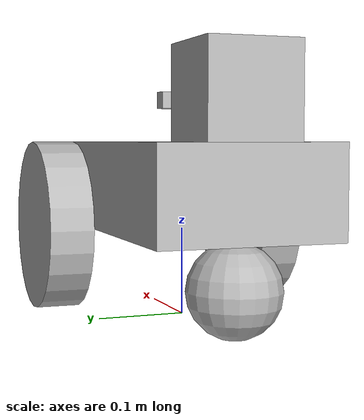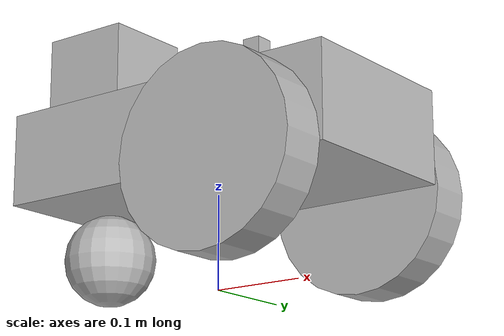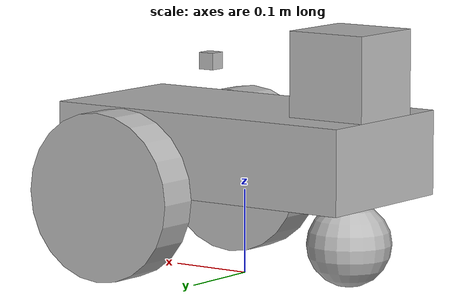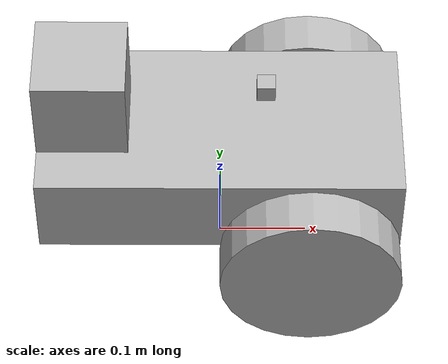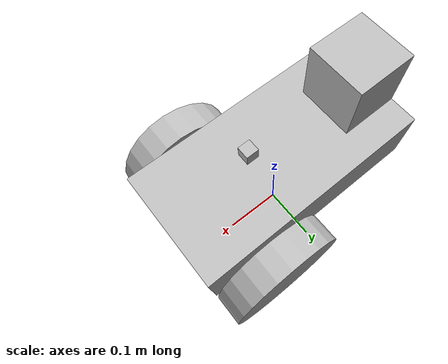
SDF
<?xml version='1.0'?>
<sdf version='1.4'>
  <model name="my_robot">
	<static>false</static>
	    <link name='chassis'>
            <pose>0 0 .1 0 0 0</pose>

            <collision name='collision'>
              <geometry>
                <box>
                  <size>.4 .2 .1</size>
                </box>
              </geometry>
            </collision>

            <visual name='visual'>
	      <pose>0 0 0.05 0 0 0</pose>
              <geometry>
                <box>
		    <size>.4 .2 .1</size>
		</box>
              </geometry>
            </visual>

	    <collision name='caster_collision'>
            <pose>-0.15 0 -0.05 0 0 0</pose>
            <geometry>
                <sphere>
                <radius>.05</radius>
              </sphere>
            </geometry>

            <surface>
              <friction>
                <ode>
                  <mu>0</mu>
                  <mu2>0</mu2>
                  <slip1>1.0</slip1>
                  <slip2>1.0</slip2>
                </ode>
              </friction>
            </surface>
          </collision>

          <visual name='caster_visual'>
            <pose>-0.15 0 -0.05 0 0 0</pose>
            <geometry>
              <sphere>
                <radius>.05</radius>
              </sphere>
            </geometry>
          </visual>
          </link>

	<link name="left_wheel">
	<pose>0.1 0.13 0.1 0 1.5707 1.5707</pose>
	<collision name="collision">
	  <geometry>
	    <cylinder>
	      <radius>.1</radius>
	      <length>.05</length>
	    </cylinder>
	  </geometry>
	</collision>
	<visual name="visual">
	  <geometry>
	    <cylinder>
	      <radius>.1</radius>
	      <length>.05</length>
	    </cylinder>
	  </geometry>
	</visual>
      </link>

	 <link name="right_wheel">
        <pose>0.1 -0.13 0.1 0 1.5707 1.5707</pose>
        <collision name="collision">
          <geometry>
            <cylinder>
              <radius>.1</radius>
              <length>.05</length>
            </cylinder>
          </geometry>
        </collision>
        <visual name="visual">
          <geometry>
            <cylinder>
              <radius>.1</radius>
              <length>.05</length>
            </cylinder>
          </geometry>
        </visual>
      </link>

	<joint type="revolute" name="left_wheel_hinge">
        <pose>0 0 -0.03 0 0 0</pose>
        <child>left_wheel</child>
        <parent>chassis</parent>
        <axis>
          <xyz>0 1 0</xyz>
        </axis>
      </joint>

      <joint type="revolute" name="right_wheel_hinge">
        <pose>0 0 0.03 0 0 0</pose>
        <child>right_wheel</child>
        <parent>chassis</parent>
        <axis>
          <xyz>0 1 0</xyz>
        </axis>
      </joint>

	<include>
      <uri>model://camera</uri>
      <pose>-0.1 0.05 0.2 0 0 3.1415</pose>
    </include>
    <joint name="cam_joint" type="fixed">
      <child>camera::link</child>
      <parent>chassis</parent>
    </joint>

	<include>
      <uri>model://noisy_imu</uri>
      <pose>0.05 0 0.25 0 0 3.1415</pose>
    </include>
    <joint name="imu_joint" type="fixed">
      <child>imu::link</child>
      <parent>chassis</parent>
    </joint>

    <transmission name="tran1">
    <type>transmission_interface/SimpleTransmission</type>
    <joint name="left_wheel_hinge">
      <hardwareInterface>EffortJointInterface</hardwareInterface>
    </joint>
    <actuator name="motor1">
      <hardwareInterface>EffortJointInterface</hardwareInterface>
      <mechanicalReduction>1</mechanicalReduction>
    </actuator>
  </transmission>

  <transmission name="tran2">
    <type>transmission_interface/SimpleTransmission</type>
    <joint name="right_wheel_hinge">
      <hardwareInterface>EffortJointInterface</hardwareInterface>
    </joint>
    <actuator name="motor2">
      <hardwareInterface>EffortJointInterface</hardwareInterface>
      <mechanicalReduction>1</mechanicalReduction>
    </actuator>
  </transmission>

  <plugin name="gazebo_ros_control" filename="libgazebo_ros_control.so">
  </plugin>
  </model>
</sdf>

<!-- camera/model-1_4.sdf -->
<sdf version="1.4">
  <model name="camera">
    <link name="link">
      <pose>0.05 0.05 0.05 0 0 0</pose>
      <inertial>
        <mass>0.1</mass>
      </inertial>
      <collision name="collision">
        <geometry>
          <box>
            <size>0.1 0.1 0.1</size>
          </box>
        </geometry>
      </collision>
      <visual name="visual">
        <geometry>
          <box>
            <size>0.1 0.1 0.1</size>
          </box>
        </geometry>
      </visual>
      <sensor name="camera" type="camera">
        <camera>
          <horizontal_fov>1.047</horizontal_fov>
          <image>
            <width>320</width>
            <height>240</height>
          </image>
          <clip>
            <near>0.1</near>
            <far>100</far>
          </clip>
	  <noise>
            <type>gaussian</type>
            <mean>0.0</mean>
            <stddev>0.07</stddev>
          </noise>
        </camera>
        <always_on>1</always_on>
        <update_rate>30</update_rate>
        <visualize>true</visualize>
      </sensor>
    </link>
  </model>
</sdf>

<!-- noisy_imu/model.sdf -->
<sdf version="1.6">
  <model name="imu">
    <link name="imu_link">
    <inertial>
      <mass>0.1</mass>
    </inertial>
    <visual name="visual">
      <geometry>
        <box>
          <size>0.02 0.02 0.02</size>
        </box>
      </geometry>
    </visual>
    <collision name="collision">
      <geometry>
        <box>
          <size>0.02 0.02 0.02</size>
        </box>
      </geometry>
    </collision>
    <sensor name="imu" type="imu">
      <imu>
        <angular_velocity>
          <x>
            <noise type="gaussian">
              <mean>0.0</mean>
              <stddev>2e-4</stddev>
              <bias_mean>0.0000075</bias_mean>
              <bias_stddev>0.0000008</bias_stddev>
            </noise>
          </x>
          <y>
            <noise type="gaussian">
              <mean>0.0</mean>
              <stddev>2e-4</stddev>
              <bias_mean>0.0000075</bias_mean>
              <bias_stddev>0.0000008</bias_stddev>
            </noise>
          </y>
          <z>
            <noise type="gaussian">
              <mean>0.0</mean>
              <stddev>2e-4</stddev>
              <bias_mean>0.0000075</bias_mean>
              <bias_stddev>0.0000008</bias_stddev>
            </noise>
          </z>
        </angular_velocity>
        <linear_acceleration>
          <x>
            <noise type="gaussian">
              <mean>0.0</mean>
              <stddev>1.7e-2</stddev>
              <bias_mean>0.1</bias_mean>
              <bias_stddev>0.001</bias_stddev>
            </noise>
          </x>
          <y>
            <noise type="gaussian">
              <mean>0.0</mean>
              <stddev>1.7e-2</stddev>
              <bias_mean>0.1</bias_mean>
              <bias_stddev>0.001</bias_stddev>
            </noise>
          </y>
          <z>
            <noise type="gaussian">
              <mean>0.0</mean>
              <stddev>1.7e-2</stddev>
              <bias_mean>0.1</bias_mean>
              <bias_stddev>0.001</bias_stddev>
            </noise>
          </z>
        </linear_acceleration>
      </imu>
    </sensor>
    </link>

  </model>
</sdf>
